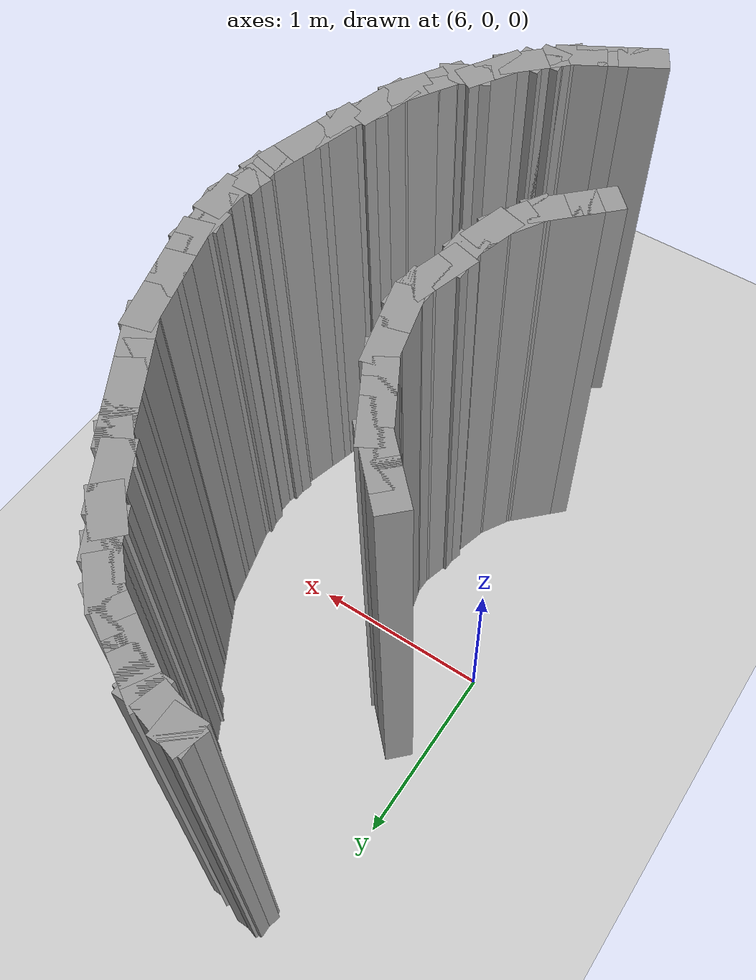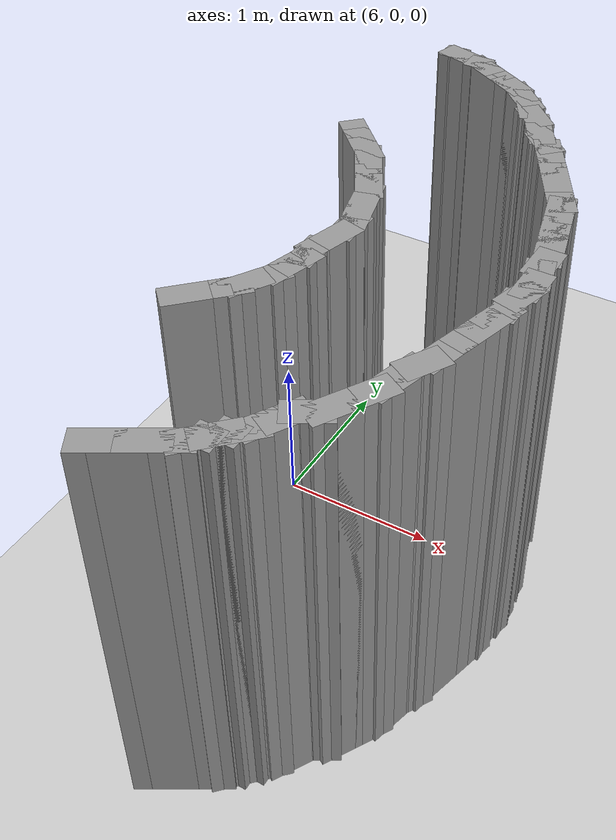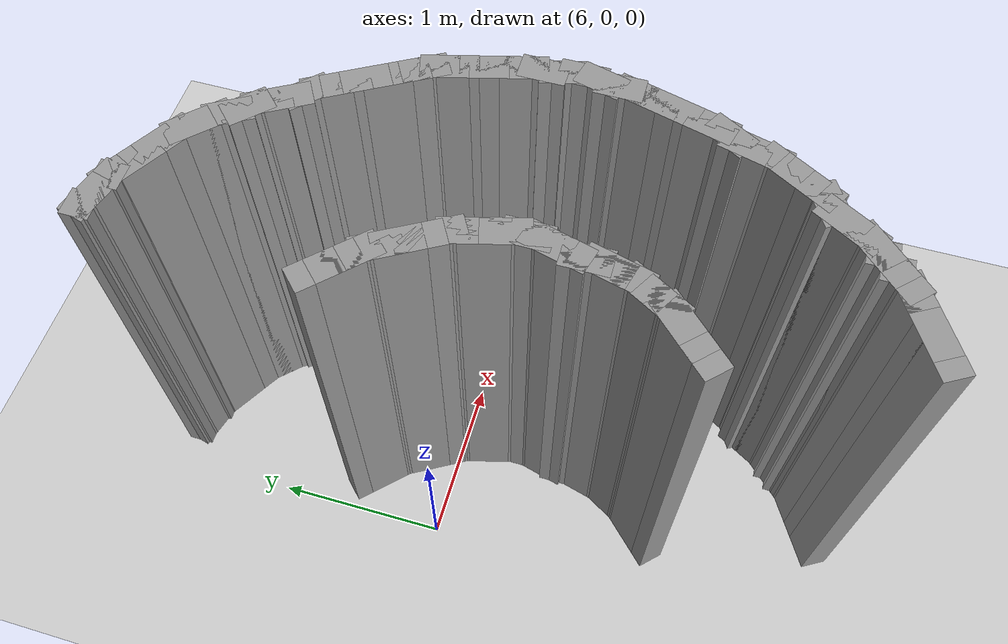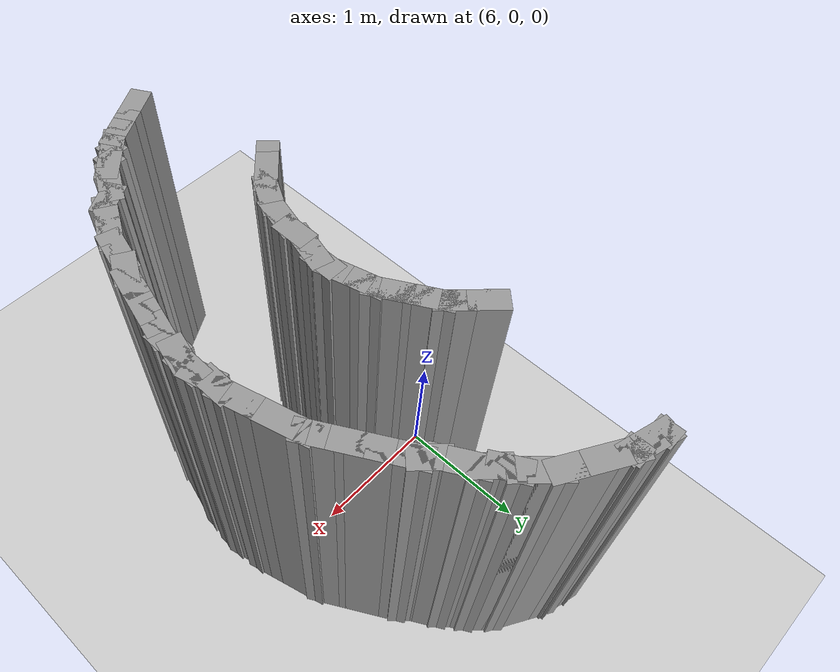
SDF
<sdf version="1.7">
 <world name="default">
  <model name="ground_plane">
   <static>1</static>
   <link name="link">
    <collision name="collision">
     <geometry><plane><normal>0 0 1</normal><size>100 100</size></plane></geometry>
     <surface><friction><ode><mu>100</mu><mu2>50</mu2></ode></friction></surface>
    </collision>
    <visual name="visual">
     <cast_shadows>0</cast_shadows>
     <geometry><plane><normal>0 0 1</normal><size>100 100</size></plane></geometry>
     <material>
      <script><uri>file://media/materials/scripts/gazebo.material</uri><name>Gazebo/Grey</name></script>
     </material>
    </visual>
   </link>
  </model>
  <model name="playground_track">
   <pose>0.405729 -1.1815 0 0 -0 0</pose>
   <link name="Wall_25">
    <collision name="Wall_25_Collision">
     <geometry><box><size>0.15 0.15 2.5</size></box></geometry>
     <pose>0 0 1.25 0 -0 0</pose>
    </collision>
    <visual name="Wall_25_Visual">
     <pose>0 0 1.25 0 -0 0</pose>
     <geometry><box><size>0.15 0.15 2.5</size></box></geometry>
     <material>
      <script><uri>file://media/materials/scripts/gazebo.material</uri><name>Gazebo/Grey</name></script>
      <ambient>1 1 1 1</ambient>
     </material>
     <meta><layer>0</layer></meta>
    </visual>
    <pose>5.82575 2.86102 0 0 -0 0</pose>
   </link>
   <link name="Wall_26">
    <collision name="Wall_26_Collision">
     <geometry><box><size>0.25 0.15 2.5</size></box></geometry>
     <pose>0 0 1.25 0 -0 0</pose>
    </collision>
    <visual name="Wall_26_Visual">
     <pose>0 0 1.25 0 -0 0</pose>
     <geometry><box><size>0.25 0.15 2.5</size></box></geometry>
     <material>
      <script><uri>file://media/materials/scripts/gazebo.material</uri><name>Gazebo/Grey</name></script>
      <ambient>1 1 1 1</ambient>
     </material>
     <meta><layer>0</layer></meta>
    </visual>
    <pose>5.87404 2.84808 0 0 -0 -0.261799</pose>
   </link>
   <link name="Wall_27">
    <collision name="Wall_27_Collision">
     <geometry><box><size>0.25 0.15 2.5</size></box></geometry>
     <pose>0 0 1.25 0 -0 0</pose>
    </collision>
    <visual name="Wall_27_Visual">
     <pose>0 0 1.25 0 -0 0</pose>
     <geometry><box><size>0.25 0.15 2.5</size></box></geometry>
     <material>
      <script><uri>file://media/materials/scripts/gazebo.material</uri><name>Gazebo/Grey</name></script>
      <ambient>1 1 1 1</ambient>
     </material>
     <meta><layer>0</layer></meta>
    </visual>
    <pose>5.97063 2.82219 0 0 -0 -0.261799</pose>
   </link>
   <link name="Wall_28">
    <collision name="Wall_28_Collision">
     <geometry><box><size>0.15 0.15 2.5</size></box></geometry>
     <pose>0 0 1.25 0 -0 0</pose>
    </collision>
    <visual name="Wall_28_Visual">
     <pose>0 0 1.25 0 -0 0</pose>
     <geometry><box><size>0.15 0.15 2.5</size></box></geometry>
     <material>
      <script><uri>file://media/materials/scripts/gazebo.material</uri><name>Gazebo/Grey</name></script>
      <ambient>1 1 1 1</ambient>
     </material>
     <meta><layer>0</layer></meta>
    </visual>
    <pose>6.01893 2.80925 0 0 -0 0</pose>
   </link>
   <link name="Wall_287">
    <collision name="Wall_287_Collision">
     <geometry><box><size>0.25 0.15 2.5</size></box></geometry>
     <pose>0 0 1.25 0 -0 0</pose>
    </collision>
    <visual name="Wall_287_Visual">
     <pose>0 0 1.25 0 -0 0</pose>
     <geometry><box><size>0.25 0.15 2.5</size></box></geometry>
     <material>
      <script><uri>file://media/materials/scripts/gazebo.material</uri><name>Gazebo/Grey</name></script>
      <ambient>1 1 1 1</ambient>
     </material>
     <meta><layer>0</layer></meta>
    </visual>
    <pose>5.78998 1.68811 0 0 -0 -0.785398</pose>
   </link>
   <link name="Wall_288">
    <collision name="Wall_288_Collision">
     <geometry><box><size>0.25 0.15 2.5</size></box></geometry>
     <pose>0 0 1.25 0 -0 0</pose>
    </collision>
    <visual name="Wall_288_Visual">
     <pose>0 0 1.25 0 -0 0</pose>
     <geometry><box><size>0.25 0.15 2.5</size></box></geometry>
     <material>
      <script><uri>file://media/materials/scripts/gazebo.material</uri><name>Gazebo/Grey</name></script>
      <ambient>1 1 1 1</ambient>
     </material>
     <meta><layer>0</layer></meta>
    </visual>
    <pose>5.86069 1.61739 0 0 -0 -0.785398</pose>
   </link>
   <link name="Wall_289">
    <collision name="Wall_289_Collision">
     <geometry><box><size>0.25 0.15 2.5</size></box></geometry>
     <pose>0 0 1.25 0 -0 0</pose>
    </collision>
    <visual name="Wall_289_Visual">
     <pose>0 0 1.25 0 -0 0</pose>
     <geometry><box><size>0.25 0.15 2.5</size></box></geometry>
     <material>
      <script><uri>file://media/materials/scripts/gazebo.material</uri><name>Gazebo/Grey</name></script>
      <ambient>1 1 1 1</ambient>
     </material>
     <meta><layer>0</layer></meta>
    </visual>
    <pose>5.93141 1.54669 0 0 -0 -0.785398</pose>
   </link>
   <link name="Wall_29">
    <collision name="Wall_29_Collision">
     <geometry><box><size>0.15 0.15 2.5</size></box></geometry>
     <pose>0 0 1.25 0 -0 0</pose>
    </collision>
    <visual name="Wall_29_Visual">
     <pose>0 0 1.25 0 -0 0</pose>
     <geometry><box><size>0.15 0.15 2.5</size></box></geometry>
     <material>
      <script><uri>file://media/materials/scripts/gazebo.material</uri><name>Gazebo/Grey</name></script>
      <ambient>1 1 1 1</ambient>
     </material>
     <meta><layer>0</layer></meta>
    </visual>
    <pose>6.01893 2.80925 0 0 -0 0</pose>
   </link>
   <link name="Wall_290">
    <collision name="Wall_290_Collision">
     <geometry><box><size>0.25 0.15 2.5</size></box></geometry>
     <pose>0 0 1.25 0 -0 0</pose>
    </collision>
    <visual name="Wall_290_Visual">
     <pose>0 0 1.25 0 -0 0</pose>
     <geometry><box><size>0.25 0.15 2.5</size></box></geometry>
     <material>
      <script><uri>file://media/materials/scripts/gazebo.material</uri><name>Gazebo/Grey</name></script>
      <ambient>1 1 1 1</ambient>
     </material>
     <meta><layer>0</layer></meta>
    </visual>
    <pose>5.99176 1.46803 0 0 -0 -1.0472</pose>
   </link>
   <link name="Wall_291">
    <collision name="Wall_291_Collision">
     <geometry><box><size>0.25 0.15 2.5</size></box></geometry>
     <pose>0 0 1.25 0 -0 0</pose>
    </collision>
    <visual name="Wall_291_Visual">
     <pose>0 0 1.25 0 -0 0</pose>
     <geometry><box><size>0.25 0.15 2.5</size></box></geometry>
     <material>
      <script><uri>file://media/materials/scripts/gazebo.material</uri><name>Gazebo/Grey</name></script>
      <ambient>1 1 1 1</ambient>
     </material>
     <meta><layer>0</layer></meta>
    </visual>
    <pose>6.04176 1.38142 0 0 -0 -1.0472</pose>
   </link>
   <link name="Wall_292">
    <collision name="Wall_292_Collision">
     <geometry><box><size>0.25 0.15 2.5</size></box></geometry>
     <pose>0 0 1.25 0 -0 0</pose>
    </collision>
    <visual name="Wall_292_Visual">
     <pose>0 0 1.25 0 -0 0</pose>
     <geometry><box><size>0.25 0.15 2.5</size></box></geometry>
     <material>
      <script><uri>file://media/materials/scripts/gazebo.material</uri><name>Gazebo/Grey</name></script>
      <ambient>1 1 1 1</ambient>
     </material>
     <meta><layer>0</layer></meta>
    </visual>
    <pose>6.09176 1.29482 0 0 -0 -1.0472</pose>
   </link>
   <link name="Wall_293">
    <collision name="Wall_293_Collision">
     <geometry><box><size>0.25 0.15 2.5</size></box></geometry>
     <pose>0 0 1.25 0 -0 0</pose>
    </collision>
    <visual name="Wall_293_Visual">
     <pose>0 0 1.25 0 -0 0</pose>
     <geometry><box><size>0.25 0.15 2.5</size></box></geometry>
     <material>
      <script><uri>file://media/materials/scripts/gazebo.material</uri><name>Gazebo/Grey</name></script>
      <ambient>1 1 1 1</ambient>
     </material>
     <meta><layer>0</layer></meta>
    </visual>
    <pose>6.14176 1.20822 0 0 -0 -1.0472</pose>
   </link>
   <link name="Wall_294">
    <collision name="Wall_294_Collision">
     <geometry><box><size>0.25 0.15 2.5</size></box></geometry>
     <pose>0 0 1.25 0 -0 0</pose>
    </collision>
    <visual name="Wall_294_Visual">
     <pose>0 0 1.25 0 -0 0</pose>
     <geometry><box><size>0.25 0.15 2.5</size></box></geometry>
     <material>
      <script><uri>file://media/materials/scripts/gazebo.material</uri><name>Gazebo/Grey</name></script>
      <ambient>1 1 1 1</ambient>
     </material>
     <meta><layer>0</layer></meta>
    </visual>
    <pose>6.1797 1.11662 0 0 -0 -1.309</pose>
   </link>
   <link name="Wall_295">
    <collision name="Wall_295_Collision">
     <geometry><box><size>0.25 0.15 2.5</size></box></geometry>
     <pose>0 0 1.25 0 -0 0</pose>
    </collision>
    <visual name="Wall_295_Visual">
     <pose>0 0 1.25 0 -0 0</pose>
     <geometry><box><size>0.25 0.15 2.5</size></box></geometry>
     <material>
      <script><uri>file://media/materials/scripts/gazebo.material</uri><name>Gazebo/Grey</name></script>
      <ambient>1 1 1 1</ambient>
     </material>
     <meta><layer>0</layer></meta>
    </visual>
    <pose>6.20558 1.02003 0 0 -0 -1.309</pose>
   </link>
   <link name="Wall_296">
    <collision name="Wall_296_Collision">
     <geometry><box><size>0.25 0.15 2.5</size></box></geometry>
     <pose>0 0 1.25 0 -0 0</pose>
    </collision>
    <visual name="Wall_296_Visual">
     <pose>0 0 1.25 0 -0 0</pose>
     <geometry><box><size>0.25 0.15 2.5</size></box></geometry>
     <material>
      <script><uri>file://media/materials/scripts/gazebo.material</uri><name>Gazebo/Grey</name></script>
      <ambient>1 1 1 1</ambient>
     </material>
     <meta><layer>0</layer></meta>
    </visual>
    <pose>6.23147 0.923438 0 0 -0 -1.309</pose>
   </link>
   <link name="Wall_297">
    <collision name="Wall_297_Collision">
     <geometry><box><size>0.25 0.15 2.5</size></box></geometry>
     <pose>0 0 1.25 0 -0 0</pose>
    </collision>
    <visual name="Wall_297_Visual">
     <pose>0 0 1.25 0 -0 0</pose>
     <geometry><box><size>0.25 0.15 2.5</size></box></geometry>
     <material>
      <script><uri>file://media/materials/scripts/gazebo.material</uri><name>Gazebo/Grey</name></script>
      <ambient>1 1 1 1</ambient>
     </material>
     <meta><layer>0</layer></meta>
    </visual>
    <pose>6.24441 0.825141 0 0 -0 -1.5708</pose>
   </link>
   <link name="Wall_298">
    <collision name="Wall_298_Collision">
     <geometry><box><size>0.25 0.15 2.5</size></box></geometry>
     <pose>0 0 1.25 0 -0 0</pose>
    </collision>
    <visual name="Wall_298_Visual">
     <pose>0 0 1.25 0 -0 0</pose>
     <geometry><box><size>0.25 0.15 2.5</size></box></geometry>
     <material>
      <script><uri>file://media/materials/scripts/gazebo.material</uri><name>Gazebo/Grey</name></script>
      <ambient>1 1 1 1</ambient>
     </material>
     <meta><layer>0</layer></meta>
    </visual>
    <pose>6.23147 0.726845 0 0 -0 -1.8326</pose>
   </link>
   <link name="Wall_299">
    <collision name="Wall_299_Collision">
     <geometry><box><size>0.25 0.15 2.5</size></box></geometry>
     <pose>0 0 1.25 0 -0 0</pose>
    </collision>
    <visual name="Wall_299_Visual">
     <pose>0 0 1.25 0 -0 0</pose>
     <geometry><box><size>0.25 0.15 2.5</size></box></geometry>
     <material>
      <script><uri>file://media/materials/scripts/gazebo.material</uri><name>Gazebo/Grey</name></script>
      <ambient>1 1 1 1</ambient>
     </material>
     <meta><layer>0</layer></meta>
    </visual>
    <pose>6.20558 0.630252 0 0 -0 -1.8326</pose>
   </link>
   <link name="Wall_30">
    <collision name="Wall_30_Collision">
     <geometry><box><size>0.15 0.15 2.5</size></box></geometry>
     <pose>0 0 1.25 0 -0 0</pose>
    </collision>
    <visual name="Wall_30_Visual">
     <pose>0 0 1.25 0 -0 0</pose>
     <geometry><box><size>0.15 0.15 2.5</size></box></geometry>
     <material>
      <script><uri>file://media/materials/scripts/gazebo.material</uri><name>Gazebo/Grey</name></script>
      <ambient>1 1 1 1</ambient>
     </material>
     <meta><layer>0</layer></meta>
    </visual>
    <pose>6.01893 2.80925 0 0 -0 0</pose>
   </link>
   <link name="Wall_300">
    <collision name="Wall_300_Collision">
     <geometry><box><size>0.25 0.15 2.5</size></box></geometry>
     <pose>0 0 1.25 0 -0 0</pose>
    </collision>
    <visual name="Wall_300_Visual">
     <pose>0 0 1.25 0 -0 0</pose>
     <geometry><box><size>0.25 0.15 2.5</size></box></geometry>
     <material>
      <script><uri>file://media/materials/scripts/gazebo.material</uri><name>Gazebo/Grey</name></script>
      <ambient>1 1 1 1</ambient>
     </material>
     <meta><layer>0</layer></meta>
    </visual>
    <pose>6.19264 0.531956 0 0 -0 -1.5708</pose>
   </link>
   <link name="Wall_301">
    <collision name="Wall_301_Collision">
     <geometry><box><size>0.25 0.15 2.5</size></box></geometry>
     <pose>0 0 1.25 0 -0 0</pose>
    </collision>
    <visual name="Wall_301_Visual">
     <pose>0 0 1.25 0 -0 0</pose>
     <geometry><box><size>0.25 0.15 2.5</size></box></geometry>
     <material>
      <script><uri>file://media/materials/scripts/gazebo.material</uri><name>Gazebo/Grey</name></script>
      <ambient>1 1 1 1</ambient>
     </material>
     <meta><layer>0</layer></meta>
    </visual>
    <pose>6.1797 0.43366 0 0 -0 -1.8326</pose>
   </link>
   <link name="Wall_302">
    <collision name="Wall_302_Collision">
     <geometry><box><size>0.25 0.15 2.5</size></box></geometry>
     <pose>0 0 1.25 0 -0 0</pose>
    </collision>
    <visual name="Wall_302_Visual">
     <pose>0 0 1.25 0 -0 0</pose>
     <geometry><box><size>0.25 0.15 2.5</size></box></geometry>
     <material>
      <script><uri>file://media/materials/scripts/gazebo.material</uri><name>Gazebo/Grey</name></script>
      <ambient>1 1 1 1</ambient>
     </material>
     <meta><layer>0</layer></meta>
    </visual>
    <pose>6.15382 0.337067 0 0 -0 -1.8326</pose>
   </link>
   <link name="Wall_303">
    <collision name="Wall_303_Collision">
     <geometry><box><size>0.25 0.15 2.5</size></box></geometry>
     <pose>0 0 1.25 0 -0 0</pose>
    </collision>
    <visual name="Wall_303_Visual">
     <pose>0 0 1.25 0 -0 0</pose>
     <geometry><box><size>0.25 0.15 2.5</size></box></geometry>
     <material>
      <script><uri>file://media/materials/scripts/gazebo.material</uri><name>Gazebo/Grey</name></script>
      <ambient>1 1 1 1</ambient>
     </material>
     <meta><layer>0</layer></meta>
    </visual>
    <pose>6.11588 0.24547 0 0 -0 -2.0944</pose>
   </link>
   <link name="Wall_304">
    <collision name="Wall_304_Collision">
     <geometry><box><size>0.25 0.15 2.5</size></box></geometry>
     <pose>0 0 1.25 0 -0 0</pose>
    </collision>
    <visual name="Wall_304_Visual">
     <pose>0 0 1.25 0 -0 0</pose>
     <geometry><box><size>0.25 0.15 2.5</size></box></geometry>
     <material>
      <script><uri>file://media/materials/scripts/gazebo.material</uri><name>Gazebo/Grey</name></script>
      <ambient>1 1 1 1</ambient>
     </material>
     <meta><layer>0</layer></meta>
    </visual>
    <pose>6.06588 0.158867 0 0 -0 -2.0944</pose>
   </link>
   <link name="Wall_305">
    <collision name="Wall_305_Collision">
     <geometry><box><size>0.25 0.15 2.5</size></box></geometry>
     <pose>0 0 1.25 0 -0 0</pose>
    </collision>
    <visual name="Wall_305_Visual">
     <pose>0 0 1.25 0 -0 0</pose>
     <geometry><box><size>0.25 0.15 2.5</size></box></geometry>
     <material>
      <script><uri>file://media/materials/scripts/gazebo.material</uri><name>Gazebo/Grey</name></script>
      <ambient>1 1 1 1</ambient>
     </material>
     <meta><layer>0</layer></meta>
    </visual>
    <pose>6.00552 0.08021 0 0 -0 -2.35619</pose>
   </link>
   <link name="Wall_306">
    <collision name="Wall_306_Collision">
     <geometry><box><size>0.25 0.15 2.5</size></box></geometry>
     <pose>0 0 1.25 0 -0 0</pose>
    </collision>
    <visual name="Wall_306_Visual">
     <pose>0 0 1.25 0 -0 0</pose>
     <geometry><box><size>0.25 0.15 2.5</size></box></geometry>
     <material>
      <script><uri>file://media/materials/scripts/gazebo.material</uri><name>Gazebo/Grey</name></script>
      <ambient>1 1 1 1</ambient>
     </material>
     <meta><layer>0</layer></meta>
    </visual>
    <pose>5.93481 0.0095 0 0 -0 -2.35619</pose>
   </link>
   <link name="Wall_307">
    <collision name="Wall_307_Collision">
     <geometry><box><size>0.25 0.15 2.5</size></box></geometry>
     <pose>0 0 1.25 0 -0 0</pose>
    </collision>
    <visual name="Wall_307_Visual">
     <pose>0 0 1.25 0 -0 0</pose>
     <geometry><box><size>0.25 0.15 2.5</size></box></geometry>
     <material>
      <script><uri>file://media/materials/scripts/gazebo.material</uri><name>Gazebo/Grey</name></script>
      <ambient>1 1 1 1</ambient>
     </material>
     <meta><layer>0</layer></meta>
    </visual>
    <pose>5.8641 -0.061211 0 0 -0 -2.35619</pose>
   </link>
   <link name="Wall_31">
    <collision name="Wall_31_Collision">
     <geometry><box><size>0.15 0.15 2.5</size></box></geometry>
     <pose>0 0 1.25 0 -0 0</pose>
    </collision>
    <visual name="Wall_31_Visual">
     <pose>0 0 1.25 0 -0 0</pose>
     <geometry><box><size>0.15 0.15 2.5</size></box></geometry>
     <material>
      <script><uri>file://media/materials/scripts/gazebo.material</uri><name>Gazebo/Grey</name></script>
      <ambient>1 1 1 1</ambient>
     </material>
     <meta><layer>0</layer></meta>
    </visual>
    <pose>6.01893 2.80925 0 0 -0 0</pose>
   </link>
   <link name="Wall_32">
    <collision name="Wall_32_Collision">
     <geometry><box><size>0.25 0.15 2.5</size></box></geometry>
     <pose>0 0 1.25 0 -0 0</pose>
    </collision>
    <visual name="Wall_32_Visual">
     <pose>0 0 1.25 0 -0 0</pose>
     <geometry><box><size>0.25 0.15 2.5</size></box></geometry>
     <material>
      <script><uri>file://media/materials/scripts/gazebo.material</uri><name>Gazebo/Grey</name></script>
      <ambient>1 1 1 1</ambient>
     </material>
     <meta><layer>0</layer></meta>
    </visual>
    <pose>6.06223 2.78425 0 0 -0 -0.523599</pose>
   </link>
   <link name="Wall_33">
    <collision name="Wall_33_Collision">
     <geometry><box><size>0.25 0.15 2.5</size></box></geometry>
     <pose>0 0 1.25 0 -0 0</pose>
    </collision>
    <visual name="Wall_33_Visual">
     <pose>0 0 1.25 0 -0 0</pose>
     <geometry><box><size>0.25 0.15 2.5</size></box></geometry>
     <material>
      <script><uri>file://media/materials/scripts/gazebo.material</uri><name>Gazebo/Grey</name></script>
      <ambient>1 1 1 1</ambient>
     </material>
     <meta><layer>0</layer></meta>
    </visual>
    <pose>6.14883 2.73425 0 0 -0 -0.523599</pose>
   </link>
   <link name="Wall_34">
    <collision name="Wall_34_Collision">
     <geometry><box><size>0.25 0.15 2.5</size></box></geometry>
     <pose>0 0 1.25 0 -0 0</pose>
    </collision>
    <visual name="Wall_34_Visual">
     <pose>0 0 1.25 0 -0 0</pose>
     <geometry><box><size>0.25 0.15 2.5</size></box></geometry>
     <material>
      <script><uri>file://media/materials/scripts/gazebo.material</uri><name>Gazebo/Grey</name></script>
      <ambient>1 1 1 1</ambient>
     </material>
     <meta><layer>0</layer></meta>
    </visual>
    <pose>6.23544 2.68425 0 0 -0 -0.523599</pose>
   </link>
   <link name="Wall_35">
    <collision name="Wall_35_Collision">
     <geometry><box><size>0.25 0.15 2.5</size></box></geometry>
     <pose>0 0 1.25 0 -0 0</pose>
    </collision>
    <visual name="Wall_35_Visual">
     <pose>0 0 1.25 0 -0 0</pose>
     <geometry><box><size>0.25 0.15 2.5</size></box></geometry>
     <material>
      <script><uri>file://media/materials/scripts/gazebo.material</uri><name>Gazebo/Grey</name></script>
      <ambient>1 1 1 1</ambient>
     </material>
     <meta><layer>0</layer></meta>
    </visual>
    <pose>6.32204 2.63425 0 0 -0 -0.523599</pose>
   </link>
   <link name="Wall_36">
    <collision name="Wall_36_Collision">
     <geometry><box><size>0.25 0.15 2.5</size></box></geometry>
     <pose>0 0 1.25 0 -0 0</pose>
    </collision>
    <visual name="Wall_36_Visual">
     <pose>0 0 1.25 0 -0 0</pose>
     <geometry><box><size>0.25 0.15 2.5</size></box></geometry>
     <material>
      <script><uri>file://media/materials/scripts/gazebo.material</uri><name>Gazebo/Grey</name></script>
      <ambient>1 1 1 1</ambient>
     </material>
     <meta><layer>0</layer></meta>
    </visual>
    <pose>6.4007 2.5739 0 0 -0 -0.785398</pose>
   </link>
   <link name="Wall_37">
    <collision name="Wall_37_Collision">
     <geometry><box><size>0.25 0.15 2.5</size></box></geometry>
     <pose>0 0 1.25 0 -0 0</pose>
    </collision>
    <visual name="Wall_37_Visual">
     <pose>0 0 1.25 0 -0 0</pose>
     <geometry><box><size>0.25 0.15 2.5</size></box></geometry>
     <material>
      <script><uri>file://media/materials/scripts/gazebo.material</uri><name>Gazebo/Grey</name></script>
      <ambient>1 1 1 1</ambient>
     </material>
     <meta><layer>0</layer></meta>
    </visual>
    <pose>6.47141 2.50319 0 0 -0 -0.785398</pose>
   </link>
   <link name="Wall_38">
    <collision name="Wall_38_Collision">
     <geometry><box><size>0.25 0.15 2.5</size></box></geometry>
     <pose>0 0 1.25 0 -0 0</pose>
    </collision>
    <visual name="Wall_38_Visual">
     <pose>0 0 1.25 0 -0 0</pose>
     <geometry><box><size>0.25 0.15 2.5</size></box></geometry>
     <material>
      <script><uri>file://media/materials/scripts/gazebo.material</uri><name>Gazebo/Grey</name></script>
      <ambient>1 1 1 1</ambient>
     </material>
     <meta><layer>0</layer></meta>
    </visual>
    <pose>6.53176 2.42453 0 0 -0 -1.0472</pose>
   </link>
   <link name="Wall_39">
    <collision name="Wall_39_Collision">
     <geometry><box><size>0.25 0.15 2.5</size></box></geometry>
     <pose>0 0 1.25 0 -0 0</pose>
    </collision>
    <visual name="Wall_39_Visual">
     <pose>0 0 1.25 0 -0 0</pose>
     <geometry><box><size>0.25 0.15 2.5</size></box></geometry>
     <material>
      <script><uri>file://media/materials/scripts/gazebo.material</uri><name>Gazebo/Grey</name></script>
      <ambient>1 1 1 1</ambient>
     </material>
     <meta><layer>0</layer></meta>
    </visual>
    <pose>6.59212 2.34587 0 0 -0 -0.785398</pose>
   </link>
   <link name="Wall_40">
    <collision name="Wall_40_Collision">
     <geometry><box><size>0.25 0.15 2.5</size></box></geometry>
     <pose>0 0 1.25 0 -0 0</pose>
    </collision>
    <visual name="Wall_40_Visual">
     <pose>0 0 1.25 0 -0 0</pose>
     <geometry><box><size>0.25 0.15 2.5</size></box></geometry>
     <material>
      <script><uri>file://media/materials/scripts/gazebo.material</uri><name>Gazebo/Grey</name></script>
      <ambient>1 1 1 1</ambient>
     </material>
     <meta><layer>0</layer></meta>
    </visual>
    <pose>6.65247 2.26722 0 0 -0 -1.0472</pose>
   </link>
   <link name="Wall_41">
    <collision name="Wall_41_Collision">
     <geometry><box><size>0.25 0.15 2.5</size></box></geometry>
     <pose>0 0 1.25 0 -0 0</pose>
    </collision>
    <visual name="Wall_41_Visual">
     <pose>0 0 1.25 0 -0 0</pose>
     <geometry><box><size>0.25 0.15 2.5</size></box></geometry>
     <material>
      <script><uri>file://media/materials/scripts/gazebo.material</uri><name>Gazebo/Grey</name></script>
      <ambient>1 1 1 1</ambient>
     </material>
     <meta><layer>0</layer></meta>
    </visual>
    <pose>6.70247 2.18061 0 0 -0 -1.0472</pose>
   </link>
   <link name="Wall_42">
    <collision name="Wall_42_Collision">
     <geometry><box><size>0.25 0.15 2.5</size></box></geometry>
     <pose>0 0 1.25 0 -0 0</pose>
    </collision>
    <visual name="Wall_42_Visual">
     <pose>0 0 1.25 0 -0 0</pose>
     <geometry><box><size>0.25 0.15 2.5</size></box></geometry>
     <material>
      <script><uri>file://media/materials/scripts/gazebo.material</uri><name>Gazebo/Grey</name></script>
      <ambient>1 1 1 1</ambient>
     </material>
     <meta><layer>0</layer></meta>
    </visual>
    <pose>6.76283 2.10196 0 0 -0 -0.785398</pose>
   </link>
   <link name="Wall_43">
    <collision name="Wall_43_Collision">
     <geometry><box><size>0.25 0.15 2.5</size></box></geometry>
     <pose>0 0 1.25 0 -0 0</pose>
    </collision>
    <visual name="Wall_43_Visual">
     <pose>0 0 1.25 0 -0 0</pose>
     <geometry><box><size>0.25 0.15 2.5</size></box></geometry>
     <material>
      <script><uri>file://media/materials/scripts/gazebo.material</uri><name>Gazebo/Grey</name></script>
      <ambient>1 1 1 1</ambient>
     </material>
     <meta><layer>0</layer></meta>
    </visual>
    <pose>6.82318 2.0233 0 0 -0 -1.0472</pose>
   </link>
   <link name="Wall_44">
    <collision name="Wall_44_Collision">
     <geometry><box><size>0.25 0.15 2.5</size></box></geometry>
     <pose>0 0 1.25 0 -0 0</pose>
    </collision>
    <visual name="Wall_44_Visual">
     <pose>0 0 1.25 0 -0 0</pose>
     <geometry><box><size>0.25 0.15 2.5</size></box></geometry>
     <material>
      <script><uri>file://media/materials/scripts/gazebo.material</uri><name>Gazebo/Grey</name></script>
      <ambient>1 1 1 1</ambient>
     </material>
     <meta><layer>0</layer></meta>
    </visual>
    <pose>6.87318 1.9367 0 0 -0 -1.0472</pose>
   </link>
   <link name="Wall_45">
    <collision name="Wall_45_Collision">
     <geometry><box><size>0.25 0.15 2.5</size></box></geometry>
     <pose>0 0 1.25 0 -0 0</pose>
    </collision>
    <visual name="Wall_45_Visual">
     <pose>0 0 1.25 0 -0 0</pose>
     <geometry><box><size>0.25 0.15 2.5</size></box></geometry>
     <material>
      <script><uri>file://media/materials/scripts/gazebo.material</uri><name>Gazebo/Grey</name></script>
      <ambient>1 1 1 1</ambient>
     </material>
     <meta><layer>0</layer></meta>
    </visual>
    <pose>6.92318 1.8501 0 0 -0 -1.0472</pose>
   </link>
   <link name="Wall_46">
    <collision name="Wall_46_Collision">
     <geometry><box><size>0.25 0.15 2.5</size></box></geometry>
     <pose>0 0 1.25 0 -0 0</pose>
    </collision>
    <visual name="Wall_46_Visual">
     <pose>0 0 1.25 0 -0 0</pose>
     <geometry><box><size>0.25 0.15 2.5</size></box></geometry>
     <material>
      <script><uri>file://media/materials/scripts/gazebo.material</uri><name>Gazebo/Grey</name></script>
      <ambient>1 1 1 1</ambient>
     </material>
     <meta><layer>0</layer></meta>
    </visual>
    <pose>6.97318 1.76349 0 0 -0 -1.0472</pose>
   </link>
   <link name="Wall_47">
    <collision name="Wall_47_Collision">
     <geometry><box><size>0.25 0.15 2.5</size></box></geometry>
     <pose>0 0 1.25 0 -0 0</pose>
    </collision>
    <visual name="Wall_47_Visual">
     <pose>0 0 1.25 0 -0 0</pose>
     <geometry><box><size>0.25 0.15 2.5</size></box></geometry>
     <material>
      <script><uri>file://media/materials/scripts/gazebo.material</uri><name>Gazebo/Grey</name></script>
      <ambient>1 1 1 1</ambient>
     </material>
     <meta><layer>0</layer></meta>
    </visual>
    <pose>7.02318 1.67689 0 0 -0 -1.0472</pose>
   </link>
   <link name="Wall_48">
    <collision name="Wall_48_Collision">
     <geometry><box><size>0.25 0.15 2.5</size></box></geometry>
     <pose>0 0 1.25 0 -0 0</pose>
    </collision>
    <visual name="Wall_48_Visual">
     <pose>0 0 1.25 0 -0 0</pose>
     <geometry><box><size>0.25 0.15 2.5</size></box></geometry>
     <material>
      <script><uri>file://media/materials/scripts/gazebo.material</uri><name>Gazebo/Grey</name></script>
      <ambient>1 1 1 1</ambient>
     </material>
     <meta><layer>0</layer></meta>
    </visual>
    <pose>7.07318 1.59029 0 0 -0 -1.0472</pose>
   </link>
   <link name="Wall_49">
    <collision name="Wall_49_Collision">
     <geometry><box><size>0.25 0.15 2.5</size></box></geometry>
     <pose>0 0 1.25 0 -0 0</pose>
    </collision>
    <visual name="Wall_49_Visual">
     <pose>0 0 1.25 0 -0 0</pose>
     <geometry><box><size>0.25 0.15 2.5</size></box></geometry>
     <material>
      <script><uri>file://media/materials/scripts/gazebo.material</uri><name>Gazebo/Grey</name></script>
      <ambient>1 1 1 1</ambient>
     </material>
     <meta><layer>0</layer></meta>
    </visual>
    <pose>7.11112 1.49869 0 0 -0 -1.309</pose>
   </link>
   <link name="Wall_50">
    <collision name="Wall_50_Collision">
     <geometry><box><size>0.25 0.15 2.5</size></box></geometry>
     <pose>0 0 1.25 0 -0 0</pose>
    </collision>
    <visual name="Wall_50_Visual">
     <pose>0 0 1.25 0 -0 0</pose>
     <geometry><box><size>0.25 0.15 2.5</size></box></geometry>
     <material>
      <script><uri>file://media/materials/scripts/gazebo.material</uri><name>Gazebo/Grey</name></script>
      <ambient>1 1 1 1</ambient>
     </material>
     <meta><layer>0</layer></meta>
    </visual>
    <pose>7.13701 1.4021 0 0 -0 -1.309</pose>
   </link>
   <link name="Wall_51">
    <collision name="Wall_51_Collision">
     <geometry><box><size>0.25 0.15 2.5</size></box></geometry>
     <pose>0 0 1.25 0 -0 0</pose>
    </collision>
    <visual name="Wall_51_Visual">
     <pose>0 0 1.25 0 -0 0</pose>
     <geometry><box><size>0.25 0.15 2.5</size></box></geometry>
     <material>
      <script><uri>file://media/materials/scripts/gazebo.material</uri><name>Gazebo/Grey</name></script>
      <ambient>1 1 1 1</ambient>
     </material>
     <meta><layer>0</layer></meta>
    </visual>
    <pose>7.16289 1.30551 0 0 -0 -1.309</pose>
   </link>
   <link name="Wall_52">
    <collision name="Wall_52_Collision">
     <geometry><box><size>0.25 0.15 2.5</size></box></geometry>
     <pose>0 0 1.25 0 -0 0</pose>
    </collision>
    <visual name="Wall_52_Visual">
     <pose>0 0 1.25 0 -0 0</pose>
     <geometry><box><size>0.25 0.15 2.5</size></box></geometry>
     <material>
      <script><uri>file://media/materials/scripts/gazebo.material</uri><name>Gazebo/Grey</name></script>
      <ambient>1 1 1 1</ambient>
     </material>
     <meta><layer>0</layer></meta>
    </visual>
    <pose>7.18877 1.20891 0 0 -0 -1.309</pose>
   </link>
   <link name="Wall_53">
    <collision name="Wall_53_Collision">
     <geometry><box><size>0.25 0.15 2.5</size></box></geometry>
     <pose>0 0 1.25 0 -0 0</pose>
    </collision>
    <visual name="Wall_53_Visual">
     <pose>0 0 1.25 0 -0 0</pose>
     <geometry><box><size>0.25 0.15 2.5</size></box></geometry>
     <material>
      <script><uri>file://media/materials/scripts/gazebo.material</uri><name>Gazebo/Grey</name></script>
      <ambient>1 1 1 1</ambient>
     </material>
     <meta><layer>0</layer></meta>
    </visual>
    <pose>7.21465 1.11232 0 0 -0 -1.309</pose>
   </link>
   <link name="Wall_54">
    <collision name="Wall_54_Collision">
     <geometry><box><size>0.25 0.15 2.5</size></box></geometry>
     <pose>0 0 1.25 0 -0 0</pose>
    </collision>
    <visual name="Wall_54_Visual">
     <pose>0 0 1.25 0 -0 0</pose>
     <geometry><box><size>0.25 0.15 2.5</size></box></geometry>
     <material>
      <script><uri>file://media/materials/scripts/gazebo.material</uri><name>Gazebo/Grey</name></script>
      <ambient>1 1 1 1</ambient>
     </material>
     <meta><layer>0</layer></meta>
    </visual>
    <pose>7.22759 1.01402 0 0 -0 -1.5708</pose>
   </link>
   <link name="Wall_55">
    <collision name="Wall_55_Collision">
     <geometry><box><size>0.25 0.15 2.5</size></box></geometry>
     <pose>0 0 1.25 0 -0 0</pose>
    </collision>
    <visual name="Wall_55_Visual">
     <pose>0 0 1.25 0 -0 0</pose>
     <geometry><box><size>0.25 0.15 2.5</size></box></geometry>
     <material>
      <script><uri>file://media/materials/scripts/gazebo.material</uri><name>Gazebo/Grey</name></script>
      <ambient>1 1 1 1</ambient>
     </material>
     <meta><layer>0</layer></meta>
    </visual>
    <pose>7.24053 0.915729 0 0 -0 -1.309</pose>
   </link>
   <link name="Wall_56">
    <collision name="Wall_56_Collision">
     <geometry><box><size>0.25 0.15 2.5</size></box></geometry>
     <pose>0 0 1.25 0 -0 0</pose>
    </collision>
    <visual name="Wall_56_Visual">
     <pose>0 0 1.25 0 -0 0</pose>
     <geometry><box><size>0.25 0.15 2.5</size></box></geometry>
     <material>
      <script><uri>file://media/materials/scripts/gazebo.material</uri><name>Gazebo/Grey</name></script>
      <ambient>1 1 1 1</ambient>
     </material>
     <meta><layer>0</layer></meta>
    </visual>
    <pose>7.25347 0.817432 0 0 -0 -1.5708</pose>
   </link>
   <link name="Wall_57">
    <collision name="Wall_57_Collision">
     <geometry><box><size>0.25 0.15 2.5</size></box></geometry>
     <pose>0 0 1.25 0 -0 0</pose>
    </collision>
    <visual name="Wall_57_Visual">
     <pose>0 0 1.25 0 -0 0</pose>
     <geometry><box><size>0.25 0.15 2.5</size></box></geometry>
     <material>
      <script><uri>file://media/materials/scripts/gazebo.material</uri><name>Gazebo/Grey</name></script>
      <ambient>1 1 1 1</ambient>
     </material>
     <meta><layer>0</layer></meta>
    </visual>
    <pose>7.24053 0.719136 0 0 -0 -1.8326</pose>
   </link>
   <link name="Wall_58">
    <collision name="Wall_58_Collision">
     <geometry><box><size>0.25 0.15 2.5</size></box></geometry>
     <pose>0 0 1.25 0 -0 0</pose>
    </collision>
    <visual name="Wall_58_Visual">
     <pose>0 0 1.25 0 -0 0</pose>
     <geometry><box><size>0.25 0.15 2.5</size></box></geometry>
     <material>
      <script><uri>file://media/materials/scripts/gazebo.material</uri><name>Gazebo/Grey</name></script>
      <ambient>1 1 1 1</ambient>
     </material>
     <meta><layer>0</layer></meta>
    </visual>
    <pose>7.22759 0.62084 0 0 -0 -1.5708</pose>
   </link>
   <link name="Wall_59">
    <collision name="Wall_59_Collision">
     <geometry><box><size>0.25 0.15 2.5</size></box></geometry>
     <pose>0 0 1.25 0 -0 0</pose>
    </collision>
    <visual name="Wall_59_Visual">
     <pose>0 0 1.25 0 -0 0</pose>
     <geometry><box><size>0.25 0.15 2.5</size></box></geometry>
     <material>
      <script><uri>file://media/materials/scripts/gazebo.material</uri><name>Gazebo/Grey</name></script>
      <ambient>1 1 1 1</ambient>
     </material>
     <meta><layer>0</layer></meta>
    </visual>
    <pose>7.21465 0.522543 0 0 -0 -1.8326</pose>
   </link>
   <link name="Wall_60">
    <collision name="Wall_60_Collision">
     <geometry><box><size>0.25 0.15 2.5</size></box></geometry>
     <pose>0 0 1.25 0 -0 0</pose>
    </collision>
    <visual name="Wall_60_Visual">
     <pose>0 0 1.25 0 -0 0</pose>
     <geometry><box><size>0.25 0.15 2.5</size></box></geometry>
     <material>
      <script><uri>file://media/materials/scripts/gazebo.material</uri><name>Gazebo/Grey</name></script>
      <ambient>1 1 1 1</ambient>
     </material>
     <meta><layer>0</layer></meta>
    </visual>
    <pose>7.18877 0.425951 0 0 -0 -1.8326</pose>
   </link>
   <link name="Wall_61">
    <collision name="Wall_61_Collision">
     <geometry><box><size>0.25 0.15 2.5</size></box></geometry>
     <pose>0 0 1.25 0 -0 0</pose>
    </collision>
    <visual name="Wall_61_Visual">
     <pose>0 0 1.25 0 -0 0</pose>
     <geometry><box><size>0.25 0.15 2.5</size></box></geometry>
     <material>
      <script><uri>file://media/materials/scripts/gazebo.material</uri><name>Gazebo/Grey</name></script>
      <ambient>1 1 1 1</ambient>
     </material>
     <meta><layer>0</layer></meta>
    </visual>
    <pose>7.16289 0.329358 0 0 -0 -1.8326</pose>
   </link>
   <link name="Wall_62">
    <collision name="Wall_62_Collision">
     <geometry><box><size>0.25 0.15 2.5</size></box></geometry>
     <pose>0 0 1.25 0 -0 0</pose>
    </collision>
    <visual name="Wall_62_Visual">
     <pose>0 0 1.25 0 -0 0</pose>
     <geometry><box><size>0.25 0.15 2.5</size></box></geometry>
     <material>
      <script><uri>file://media/materials/scripts/gazebo.material</uri><name>Gazebo/Grey</name></script>
      <ambient>1 1 1 1</ambient>
     </material>
     <meta><layer>0</layer></meta>
    </visual>
    <pose>7.13701 0.232766 0 0 -0 -1.8326</pose>
   </link>
   <link name="Wall_63">
    <collision name="Wall_63_Collision">
     <geometry><box><size>0.25 0.15 2.5</size></box></geometry>
     <pose>0 0 1.25 0 -0 0</pose>
    </collision>
    <visual name="Wall_63_Visual">
     <pose>0 0 1.25 0 -0 0</pose>
     <geometry><box><size>0.25 0.15 2.5</size></box></geometry>
     <material>
      <script><uri>file://media/materials/scripts/gazebo.material</uri><name>Gazebo/Grey</name></script>
      <ambient>1 1 1 1</ambient>
     </material>
     <meta><layer>0</layer></meta>
    </visual>
    <pose>7.11112 0.136173 0 0 -0 -1.8326</pose>
   </link>
   <link name="Wall_64">
    <collision name="Wall_64_Collision">
     <geometry><box><size>0.25 0.15 2.5</size></box></geometry>
     <pose>0 0 1.25 0 -0 0</pose>
    </collision>
    <visual name="Wall_64_Visual">
     <pose>0 0 1.25 0 -0 0</pose>
     <geometry><box><size>0.25 0.15 2.5</size></box></geometry>
     <material>
      <script><uri>file://media/materials/scripts/gazebo.material</uri><name>Gazebo/Grey</name></script>
      <ambient>1 1 1 1</ambient>
     </material>
     <meta><layer>0</layer></meta>
    </visual>
    <pose>7.07318 0.044575 0 0 -0 -2.0944</pose>
   </link>
   <link name="Wall_65">
    <collision name="Wall_65_Collision">
     <geometry><box><size>0.25 0.15 2.5</size></box></geometry>
     <pose>0 0 1.25 0 -0 0</pose>
    </collision>
    <visual name="Wall_65_Visual">
     <pose>0 0 1.25 0 -0 0</pose>
     <geometry><box><size>0.25 0.15 2.5</size></box></geometry>
     <material>
      <script><uri>file://media/materials/scripts/gazebo.material</uri><name>Gazebo/Grey</name></script>
      <ambient>1 1 1 1</ambient>
     </material>
     <meta><layer>0</layer></meta>
    </visual>
    <pose>7.03524 -0.047022 0 0 -0 -1.8326</pose>
   </link>
   <link name="Wall_66">
    <collision name="Wall_66_Collision">
     <geometry><box><size>0.25 0.15 2.5</size></box></geometry>
     <pose>0 0 1.25 0 -0 0</pose>
    </collision>
    <visual name="Wall_66_Visual">
     <pose>0 0 1.25 0 -0 0</pose>
     <geometry><box><size>0.25 0.15 2.5</size></box></geometry>
     <material>
      <script><uri>file://media/materials/scripts/gazebo.material</uri><name>Gazebo/Grey</name></script>
      <ambient>1 1 1 1</ambient>
     </material>
     <meta><layer>0</layer></meta>
    </visual>
    <pose>7.00936 -0.143615 0 0 -0 -1.8326</pose>
   </link>
   <link name="Wall_67">
    <collision name="Wall_67_Collision">
     <geometry><box><size>0.25 0.15 2.5</size></box></geometry>
     <pose>0 0 1.25 0 -0 0</pose>
    </collision>
    <visual name="Wall_67_Visual">
     <pose>0 0 1.25 0 -0 0</pose>
     <geometry><box><size>0.25 0.15 2.5</size></box></geometry>
     <material>
      <script><uri>file://media/materials/scripts/gazebo.material</uri><name>Gazebo/Grey</name></script>
      <ambient>1 1 1 1</ambient>
     </material>
     <meta><layer>0</layer></meta>
    </visual>
    <pose>6.97142 -0.235212 0 0 -0 -2.0944</pose>
   </link>
   <link name="Wall_68">
    <collision name="Wall_68_Collision">
     <geometry><box><size>0.25 0.15 2.5</size></box></geometry>
     <pose>0 0 1.25 0 -0 0</pose>
    </collision>
    <visual name="Wall_68_Visual">
     <pose>0 0 1.25 0 -0 0</pose>
     <geometry><box><size>0.25 0.15 2.5</size></box></geometry>
     <material>
      <script><uri>file://media/materials/scripts/gazebo.material</uri><name>Gazebo/Grey</name></script>
      <ambient>1 1 1 1</ambient>
     </material>
     <meta><layer>0</layer></meta>
    </visual>
    <pose>6.92142 -0.321815 0 0 -0 -2.0944</pose>
   </link>
   <link name="Wall_69">
    <collision name="Wall_69_Collision">
     <geometry><box><size>0.25 0.15 2.5</size></box></geometry>
     <pose>0 0 1.25 0 -0 0</pose>
    </collision>
    <visual name="Wall_69_Visual">
     <pose>0 0 1.25 0 -0 0</pose>
     <geometry><box><size>0.25 0.15 2.5</size></box></geometry>
     <material>
      <script><uri>file://media/materials/scripts/gazebo.material</uri><name>Gazebo/Grey</name></script>
      <ambient>1 1 1 1</ambient>
     </material>
     <meta><layer>0</layer></meta>
    </visual>
    <pose>6.87142 -0.408417 0 0 -0 -2.0944</pose>
   </link>
   <link name="Wall_70">
    <collision name="Wall_70_Collision">
     <geometry><box><size>0.25 0.15 2.5</size></box></geometry>
     <pose>0 0 1.25 0 -0 0</pose>
    </collision>
    <visual name="Wall_70_Visual">
     <pose>0 0 1.25 0 -0 0</pose>
     <geometry><box><size>0.25 0.15 2.5</size></box></geometry>
     <material>
      <script><uri>file://media/materials/scripts/gazebo.material</uri><name>Gazebo/Grey</name></script>
      <ambient>1 1 1 1</ambient>
     </material>
     <meta><layer>0</layer></meta>
    </visual>
    <pose>6.80312 -0.476719 0 0 -0 -2.61799</pose>
   </link>
   <link name="Wall_71">
    <collision name="Wall_71_Collision">
     <geometry><box><size>0.25 0.15 2.5</size></box></geometry>
     <pose>0 0 1.25 0 -0 0</pose>
    </collision>
    <visual name="Wall_71_Visual">
     <pose>0 0 1.25 0 -0 0</pose>
     <geometry><box><size>0.25 0.15 2.5</size></box></geometry>
     <material>
      <script><uri>file://media/materials/scripts/gazebo.material</uri><name>Gazebo/Grey</name></script>
      <ambient>1 1 1 1</ambient>
     </material>
     <meta><layer>0</layer></meta>
    </visual>
    <pose>6.73482 -0.54502 0 0 -0 -2.0944</pose>
   </link>
   <link name="Wall_72">
    <collision name="Wall_72_Collision">
     <geometry><box><size>0.25 0.15 2.5</size></box></geometry>
     <pose>0 0 1.25 0 -0 0</pose>
    </collision>
    <visual name="Wall_72_Visual">
     <pose>0 0 1.25 0 -0 0</pose>
     <geometry><box><size>0.25 0.15 2.5</size></box></geometry>
     <material>
      <script><uri>file://media/materials/scripts/gazebo.material</uri><name>Gazebo/Grey</name></script>
      <ambient>1 1 1 1</ambient>
     </material>
     <meta><layer>0</layer></meta>
    </visual>
    <pose>6.68482 -0.631622 0 0 -0 -2.0944</pose>
   </link>
   <link name="Wall_73">
    <collision name="Wall_73_Collision">
     <geometry><box><size>0.25 0.15 2.5</size></box></geometry>
     <pose>0 0 1.25 0 -0 0</pose>
    </collision>
    <visual name="Wall_73_Visual">
     <pose>0 0 1.25 0 -0 0</pose>
     <geometry><box><size>0.25 0.15 2.5</size></box></geometry>
     <material>
      <script><uri>file://media/materials/scripts/gazebo.material</uri><name>Gazebo/Grey</name></script>
      <ambient>1 1 1 1</ambient>
     </material>
     <meta><layer>0</layer></meta>
    </visual>
    <pose>6.62446 -0.710279 0 0 -0 -2.35619</pose>
   </link>
   <link name="Wall_74">
    <collision name="Wall_74_Collision">
     <geometry><box><size>0.15 0.15 2.5</size></box></geometry>
     <pose>0 0 1.25 0 -0 0</pose>
    </collision>
    <visual name="Wall_74_Visual">
     <pose>0 0 1.25 0 -0 0</pose>
     <geometry><box><size>0.15 0.15 2.5</size></box></geometry>
     <material>
      <script><uri>file://media/materials/scripts/gazebo.material</uri><name>Gazebo/Grey</name></script>
      <ambient>1 1 1 1</ambient>
     </material>
     <meta><layer>0</layer></meta>
    </visual>
    <pose>6.58911 -0.745634 0 0 -0 0</pose>
   </link>
   <link name="Wall_75">
    <collision name="Wall_75_Collision">
     <geometry><box><size>0.25 0.15 2.5</size></box></geometry>
     <pose>0 0 1.25 0 -0 0</pose>
    </collision>
    <visual name="Wall_75_Visual">
     <pose>0 0 1.25 0 -0 0</pose>
     <geometry><box><size>0.25 0.15 2.5</size></box></geometry>
     <material>
      <script><uri>file://media/materials/scripts/gazebo.material</uri><name>Gazebo/Grey</name></script>
      <ambient>1 1 1 1</ambient>
     </material>
     <meta><layer>0</layer></meta>
    </visual>
    <pose>6.55375 -0.78099 0 0 -0 -2.35619</pose>
   </link>
   <link name="Wall_76">
    <collision name="Wall_76_Collision">
     <geometry><box><size>0.15 0.15 2.5</size></box></geometry>
     <pose>0 0 1.25 0 -0 0</pose>
    </collision>
    <visual name="Wall_76_Visual">
     <pose>0 0 1.25 0 -0 0</pose>
     <geometry><box><size>0.15 0.15 2.5</size></box></geometry>
     <material>
      <script><uri>file://media/materials/scripts/gazebo.material</uri><name>Gazebo/Grey</name></script>
      <ambient>1 1 1 1</ambient>
     </material>
     <meta><layer>0</layer></meta>
    </visual>
    <pose>6.51839 -0.816345 0 0 -0 0</pose>
   </link>
   <link name="Wall_77">
    <collision name="Wall_77_Collision">
     <geometry><box><size>0.25 0.15 2.5</size></box></geometry>
     <pose>0 0 1.25 0 -0 0</pose>
    </collision>
    <visual name="Wall_77_Visual">
     <pose>0 0 1.25 0 -0 0</pose>
     <geometry><box><size>0.25 0.15 2.5</size></box></geometry>
     <material>
      <script><uri>file://media/materials/scripts/gazebo.material</uri><name>Gazebo/Grey</name></script>
      <ambient>1 1 1 1</ambient>
     </material>
     <meta><layer>0</layer></meta>
    </visual>
    <pose>6.55375 -0.78099 0 0 -0 0.785398</pose>
   </link>
   <link name="Wall_79">
    <collision name="Wall_79_Collision">
     <geometry><box><size>0.15 0.15 2.5</size></box></geometry>
     <pose>0 0 1.25 0 -0 0</pose>
    </collision>
    <visual name="Wall_79_Visual">
     <pose>0 0 1.25 0 -0 0</pose>
     <geometry><box><size>0.15 0.15 2.5</size></box></geometry>
     <material>
      <script><uri>file://media/materials/scripts/gazebo.material</uri><name>Gazebo/Grey</name></script>
      <ambient>1 1 1 1</ambient>
     </material>
     <meta><layer>0</layer></meta>
    </visual>
    <pose>6.51839 -0.816345 0 0 -0 0</pose>
   </link>
   <link name="Wall_80">
    <collision name="Wall_80_Collision">
     <geometry><box><size>0.25 0.15 2.5</size></box></geometry>
     <pose>0 0 1.25 0 -0 0</pose>
    </collision>
    <visual name="Wall_80_Visual">
     <pose>0 0 1.25 0 -0 0</pose>
     <geometry><box><size>0.25 0.15 2.5</size></box></geometry>
     <material>
      <script><uri>file://media/materials/scripts/gazebo.material</uri><name>Gazebo/Grey</name></script>
      <ambient>1 1 1 1</ambient>
     </material>
     <meta><layer>0</layer></meta>
    </visual>
    <pose>6.48304 -0.8517 0 0 -0 -2.35619</pose>
   </link>
   <link name="Wall_81">
    <collision name="Wall_81_Collision">
     <geometry><box><size>0.25 0.15 2.5</size></box></geometry>
     <pose>0 0 1.25 0 -0 0</pose>
    </collision>
    <visual name="Wall_81_Visual">
     <pose>0 0 1.25 0 -0 0</pose>
     <geometry><box><size>0.25 0.15 2.5</size></box></geometry>
     <material>
      <script><uri>file://media/materials/scripts/gazebo.material</uri><name>Gazebo/Grey</name></script>
      <ambient>1 1 1 1</ambient>
     </material>
     <meta><layer>0</layer></meta>
    </visual>
    <pose>6.40438 -0.912056 0 0 -0 -2.61799</pose>
   </link>
   <link name="Wall_82">
    <collision name="Wall_82_Collision">
     <geometry><box><size>0.25 0.15 2.5</size></box></geometry>
     <pose>0 0 1.25 0 -0 0</pose>
    </collision>
    <visual name="Wall_82_Visual">
     <pose>0 0 1.25 0 -0 0</pose>
     <geometry><box><size>0.25 0.15 2.5</size></box></geometry>
     <material>
      <script><uri>file://media/materials/scripts/gazebo.material</uri><name>Gazebo/Grey</name></script>
      <ambient>1 1 1 1</ambient>
     </material>
     <meta><layer>0</layer></meta>
    </visual>
    <pose>6.31778 -0.962056 0 0 -0 -2.61799</pose>
   </link>
   <link name="Wall_83">
    <collision name="Wall_83_Collision">
     <geometry><box><size>0.25 0.15 2.5</size></box></geometry>
     <pose>0 0 1.25 0 -0 0</pose>
    </collision>
    <visual name="Wall_83_Visual">
     <pose>0 0 1.25 0 -0 0</pose>
     <geometry><box><size>0.25 0.15 2.5</size></box></geometry>
     <material>
      <script><uri>file://media/materials/scripts/gazebo.material</uri><name>Gazebo/Grey</name></script>
      <ambient>1 1 1 1</ambient>
     </material>
     <meta><layer>0</layer></meta>
    </visual>
    <pose>6.23118 -1.01206 0 0 -0 -2.61799</pose>
   </link>
   <link name="Wall_84">
    <collision name="Wall_84_Collision">
     <geometry><box><size>0.25 0.15 2.5</size></box></geometry>
     <pose>0 0 1.25 0 -0 0</pose>
    </collision>
    <visual name="Wall_84_Visual">
     <pose>0 0 1.25 0 -0 0</pose>
     <geometry><box><size>0.25 0.15 2.5</size></box></geometry>
     <material>
      <script><uri>file://media/materials/scripts/gazebo.material</uri><name>Gazebo/Grey</name></script>
      <ambient>1 1 1 1</ambient>
     </material>
     <meta><layer>0</layer></meta>
    </visual>
    <pose>6.14457 -1.06206 0 0 -0 -2.61799</pose>
   </link>
   <static>1</static>
  </model>
 </world>
</sdf>
